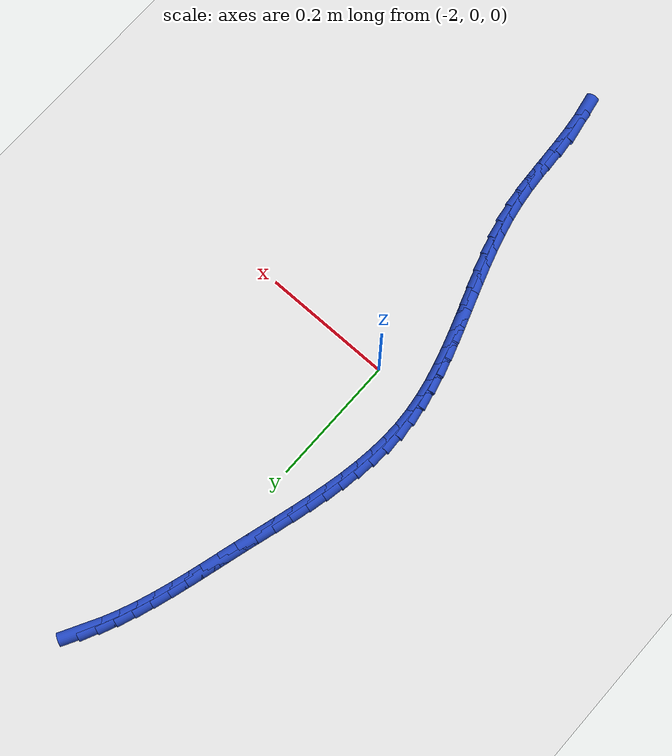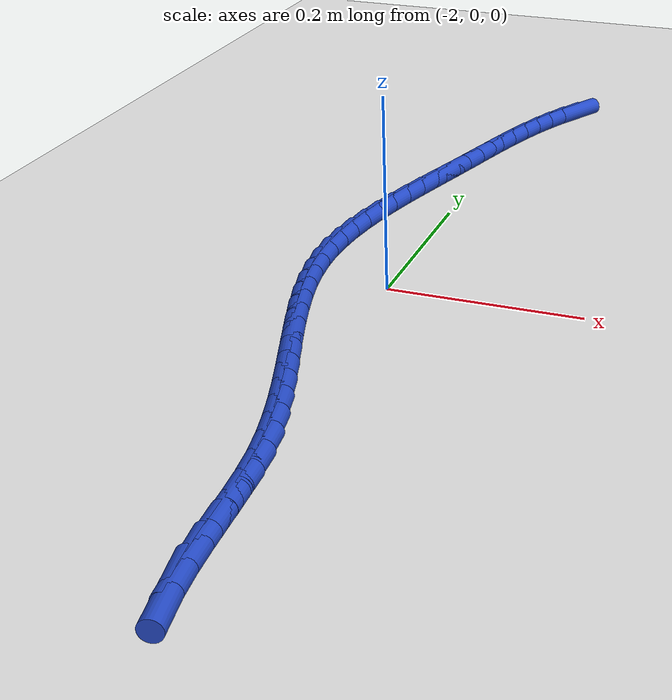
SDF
<sdf version="1.6">
 <world name="default">
  <model name="ground_plane">
   <static>1</static>
   <link name="link">
    <collision name="collision">
     <geometry><plane><normal>0 0 1</normal><size>100 100</size></plane></geometry>
     <surface><friction><ode><mu>100</mu><mu2>50</mu2></ode></friction></surface>
    </collision>
    <visual name="visual">
     <cast_shadows>0</cast_shadows>
     <geometry><plane><normal>0 0 1</normal><size>100 100</size></plane></geometry>
     <material>
      <script><uri>file://media/materials/scripts/gazebo.material</uri><name>Gazebo/WhiteGlow</name></script>
     </material>
    </visual>
   </link>
  </model>
  <model name="line">
   <link name="link_100">
    <pose>-1.941502955201517 0.5482518244195889 0.01 0 1.57 1.0692731683474574</pose>
    <collision name="collision">
     <geometry><cylinder><radius>0.01</radius><length>0.08</length></cylinder></geometry>
    </collision>
    <visual name="visual">
     <material>
      <script><name>Gazebo/Blue</name><uri>file://media/materials/scripts/gazebo.material</uri></script>
     </material>
     <geometry><cylinder><radius>0.01</radius><length>0.08</length></cylinder></geometry>
    </visual>
   </link>
   <link name="link_101">
    <pose>-1.9543376901901044 0.524842816202541 0.01 0 1.57 1.1289469746485805</pose>
    <collision name="collision">
     <geometry><cylinder><radius>0.01</radius><length>0.08</length></cylinder></geometry>
    </collision>
    <visual name="visual">
     <material>
      <script><name>Gazebo/Blue</name><uri>file://media/materials/scripts/gazebo.material</uri></script>
     </material>
     <geometry><cylinder><radius>0.01</radius><length>0.08</length></cylinder></geometry>
    </visual>
   </link>
   <link name="link_102">
    <pose>-1.965840463904415 0.5005262010480431 0.01 0 1.57 1.179040808273105</pose>
    <collision name="collision">
     <geometry><cylinder><radius>0.01</radius><length>0.08</length></cylinder></geometry>
    </collision>
    <visual name="visual">
     <material>
      <script><name>Gazebo/Blue</name><uri>file://media/materials/scripts/gazebo.material</uri></script>
     </material>
     <geometry><cylinder><radius>0.01</radius><length>0.08</length></cylinder></geometry>
    </visual>
   </link>
   <link name="link_103">
    <pose>-1.976210686622561 0.4754233002572337 0.01 0 1.57 1.219732508679535</pose>
    <collision name="collision">
     <geometry><cylinder><radius>0.01</radius><length>0.08</length></cylinder></geometry>
    </collision>
    <visual name="visual">
     <material>
      <script><name>Gazebo/Blue</name><uri>file://media/materials/scripts/gazebo.material</uri></script>
     </material>
     <geometry><cylinder><radius>0.01</radius><length>0.08</length></cylinder></geometry>
    </visual>
   </link>
   <link name="link_104">
    <pose>-1.9856477686226572 0.4496554351312512 0.01 0 1.57 1.2513444717028135</pose>
    <collision name="collision">
     <geometry><cylinder><radius>0.01</radius><length>0.08</length></cylinder></geometry>
    </collision>
    <visual name="visual">
     <material>
      <script><name>Gazebo/Blue</name><uri>file://media/materials/scripts/gazebo.material</uri></script>
     </material>
     <geometry><cylinder><radius>0.01</radius><length>0.08</length></cylinder></geometry>
    </visual>
   </link>
   <link name="link_105">
    <pose>-1.9943511201828177 0.42334392697123513 0.01 0 1.57 1.2742381621235594</pose>
    <collision name="collision">
     <geometry><cylinder><radius>0.01</radius><length>0.08</length></cylinder></geometry>
    </collision>
    <visual name="visual">
     <material>
      <script><name>Gazebo/Blue</name><uri>file://media/materials/scripts/gazebo.material</uri></script>
     </material>
     <geometry><cylinder><radius>0.01</radius><length>0.08</length></cylinder></geometry>
    </visual>
   </link>
   <link name="link_106">
    <pose>-2.002520151581156 0.3966100970783239 0.01 0 1.57 1.288742928952122</pose>
    <collision name="collision">
     <geometry><cylinder><radius>0.01</radius><length>0.08</length></cylinder></geometry>
    </collision>
    <visual name="visual">
     <material>
      <script><name>Gazebo/Blue</name><uri>file://media/materials/scripts/gazebo.material</uri></script>
     </material>
     <geometry><cylinder><radius>0.01</radius><length>0.08</length></cylinder></geometry>
    </visual>
   </link>
   <link name="link_107">
    <pose>-2.010354273095785 0.3695752667536561 0.01 0 1.57 1.2951128282152966</pose>
    <collision name="collision">
     <geometry><cylinder><radius>0.01</radius><length>0.08</length></cylinder></geometry>
    </collision>
    <visual name="visual">
     <material>
      <script><name>Gazebo/Blue</name><uri>file://media/materials/scripts/gazebo.material</uri></script>
     </material>
     <geometry><cylinder><radius>0.01</radius><length>0.08</length></cylinder></geometry>
    </visual>
   </link>
   <link name="link_108">
    <pose>-2.0180528950048204 0.3423607572983701 0.01 0 1.57 1.2935065624150435</pose>
    <collision name="collision">
     <geometry><cylinder><radius>0.01</radius><length>0.08</length></cylinder></geometry>
    </collision>
    <visual name="visual">
     <material>
      <script><name>Gazebo/Blue</name><uri>file://media/materials/scripts/gazebo.material</uri></script>
     </material>
     <geometry><cylinder><radius>0.01</radius><length>0.08</length></cylinder></geometry>
    </visual>
   </link>
   <link name="link_109">
    <pose>-2.025815365289009 0.3150878724017007 0.01 0 1.57 1.2872684499061213</pose>
    <collision name="collision">
     <geometry><cylinder><radius>0.01</radius><length>0.08</length></cylinder></geometry>
    </collision>
    <visual name="visual">
     <material>
      <script><name>Gazebo/Blue</name><uri>file://media/materials/scripts/gazebo.material</uri></script>
     </material>
     <geometry><cylinder><radius>0.01</radius><length>0.08</length></cylinder></geometry>
    </visual>
   </link>
   <link name="link_110">
    <pose>-2.033751147054904 0.2878525046645457 0.01 0 1.57 1.2862510630631867</pose>
    <collision name="collision">
     <geometry><cylinder><radius>0.01</radius><length>0.08</length></cylinder></geometry>
    </collision>
    <visual name="visual">
     <material>
      <script><name>Gazebo/Blue</name><uri>file://media/materials/scripts/gazebo.material</uri></script>
     </material>
     <geometry><cylinder><radius>0.01</radius><length>0.08</length></cylinder></geometry>
    </visual>
   </link>
   <link name="link_111">
    <pose>-2.041700258716204 0.2606743727714146 0.01 0 1.57 1.2923285841082104</pose>
    <collision name="collision">
     <geometry><cylinder><radius>0.01</radius><length>0.08</length></cylinder></geometry>
    </collision>
    <visual name="visual">
     <material>
      <script><name>Gazebo/Blue</name><uri>file://media/materials/scripts/gazebo.material</uri></script>
     </material>
     <geometry><cylinder><radius>0.01</radius><length>0.08</length></cylinder></geometry>
    </visual>
   </link>
   <link name="link_112">
    <pose>-2.0494524431242516 0.2335589821504966 0.01 0 1.57 1.305628388655664</pose>
    <collision name="collision">
     <geometry><cylinder><radius>0.01</radius><length>0.08</length></cylinder></geometry>
    </collision>
    <visual name="visual">
     <material>
      <script><name>Gazebo/Blue</name><uri>file://media/materials/scripts/gazebo.material</uri></script>
     </material>
     <geometry><cylinder><radius>0.01</radius><length>0.08</length></cylinder></geometry>
    </visual>
   </link>
   <link name="link_113">
    <pose>-2.056797443130389 0.20651183822998256 0.01 0 1.57 1.3263686787005735</pose>
    <collision name="collision">
     <geometry><cylinder><radius>0.01</radius><length>0.08</length></cylinder></geometry>
    </collision>
    <visual name="visual">
     <material>
      <script><name>Gazebo/Blue</name><uri>file://media/materials/scripts/gazebo.material</uri></script>
     </material>
     <geometry><cylinder><radius>0.01</radius><length>0.08</length></cylinder></geometry>
    </visual>
   </link>
   <link name="link_114">
    <pose>-2.0635250015859548 0.17953844643806166 0.01 0 1.57 1.3548436988760484</pose>
    <collision name="collision">
     <geometry><cylinder><radius>0.01</radius><length>0.08</length></cylinder></geometry>
    </collision>
    <visual name="visual">
     <material>
      <script><name>Gazebo/Blue</name><uri>file://media/materials/scripts/gazebo.material</uri></script>
     </material>
     <geometry><cylinder><radius>0.01</radius><length>0.08</length></cylinder></geometry>
    </visual>
   </link>
   <link name="link_115">
    <pose>-2.0694248613422923 0.15264431220292343 0.01 0 1.57 1.3913951820038368</pose>
    <collision name="collision">
     <geometry><cylinder><radius>0.01</radius><length>0.08</length></cylinder></geometry>
    </collision>
    <visual name="visual">
     <material>
      <script><name>Gazebo/Blue</name><uri>file://media/materials/scripts/gazebo.material</uri></script>
     </material>
     <geometry><cylinder><radius>0.01</radius><length>0.08</length></cylinder></geometry>
    </visual>
   </link>
   <link name="link_116">
    <pose>-2.0742867652507435 0.12583494095275843 0.01 0 1.57 1.4363645716560793</pose>
    <collision name="collision">
     <geometry><cylinder><radius>0.01</radius><length>0.08</length></cylinder></geometry>
    </collision>
    <visual name="visual">
     <material>
      <script><name>Gazebo/Blue</name><uri>file://media/materials/scripts/gazebo.material</uri></script>
     </material>
     <geometry><cylinder><radius>0.01</radius><length>0.08</length></cylinder></geometry>
    </visual>
   </link>
   <link name="link_117">
    <pose>-2.0779004561626477 0.09911583811575606 0.01 0 1.57 1.4900201297377609</pose>
    <collision name="collision">
     <geometry><cylinder><radius>0.01</radius><length>0.08</length></cylinder></geometry>
    </collision>
    <visual name="visual">
     <material>
      <script><name>Gazebo/Blue</name><uri>file://media/materials/scripts/gazebo.material</uri></script>
     </material>
     <geometry><cylinder><radius>0.01</radius><length>0.08</length></cylinder></geometry>
    </visual>
   </link>
   <link name="link_118">
    <pose>-2.0800556769293483 0.07249250912010612 0.01 0 1.57 1.552455401934248</pose>
    <collision name="collision">
     <geometry><cylinder><radius>0.01</radius><length>0.08</length></cylinder></geometry>
    </collision>
    <visual name="visual">
     <material>
      <script><name>Gazebo/Blue</name><uri>file://media/materials/scripts/gazebo.material</uri></script>
     </material>
     <geometry><cylinder><radius>0.01</radius><length>0.08</length></cylinder></geometry>
    </visual>
   </link>
   <link name="link_119">
    <pose>-2.0805421704021847 0.04597045939399802 0.01 0 1.57 -1.5182510078453524</pose>
    <collision name="collision">
     <geometry><cylinder><radius>0.01</radius><length>0.08</length></cylinder></geometry>
    </collision>
    <visual name="visual">
     <material>
      <script><name>Gazebo/Blue</name><uri>file://media/materials/scripts/gazebo.material</uri></script>
     </material>
     <geometry><cylinder><radius>0.01</radius><length>0.08</length></cylinder></geometry>
    </visual>
   </link>
   <link name="link_120">
    <pose>-2.079152881943194 0.019554983420783698 0.01 0 1.57 -1.4464111956761225</pose>
    <collision name="collision">
     <geometry><cylinder><radius>0.01</radius><length>0.08</length></cylinder></geometry>
    </collision>
    <visual name="visual">
     <material>
      <script><name>Gazebo/Blue</name><uri>file://media/materials/scripts/gazebo.material</uri></script>
     </material>
     <geometry><cylinder><radius>0.01</radius><length>0.08</length></cylinder></geometry>
    </visual>
   </link>
   <link name="link_121">
    <pose>-2.0758626280704604 -0.006760603911369987 0.01 0 1.57 -1.384706589191833</pose>
    <collision name="collision">
     <geometry><cylinder><radius>0.01</radius><length>0.08</length></cylinder></geometry>
    </collision>
    <visual name="visual">
     <material>
      <script><name>Gazebo/Blue</name><uri>file://media/materials/scripts/gazebo.material</uri></script>
     </material>
     <geometry><cylinder><radius>0.01</radius><length>0.08</length></cylinder></geometry>
    </visual>
   </link>
   <link name="link_122">
    <pose>-2.070922368586277 -0.03300117688089757 0.01 0 1.57 -1.3341634809378022</pose>
    <collision name="collision">
     <geometry><cylinder><radius>0.01</radius><length>0.08</length></cylinder></geometry>
    </collision>
    <visual name="visual">
     <material>
      <script><name>Gazebo/Blue</name><uri>file://media/materials/scripts/gazebo.material</uri></script>
     </material>
     <geometry><cylinder><radius>0.01</radius><length>0.08</length></cylinder></geometry>
    </visual>
   </link>
   <link name="link_123">
    <pose>-2.0646061572044 -0.059193130929438086 0.01 0 1.57 -1.2945807226819928</pose>
    <collision name="collision">
     <geometry><cylinder><radius>0.01</radius><length>0.08</length></cylinder></geometry>
    </collision>
    <visual name="visual">
     <material>
      <script><name>Gazebo/Blue</name><uri>file://media/materials/scripts/gazebo.material</uri></script>
     </material>
     <geometry><cylinder><radius>0.01</radius><length>0.08</length></cylinder></geometry>
    </visual>
   </link>
   <link name="link_124">
    <pose>-2.0571880476385864 -0.08536286149863068 0.01 0 1.57 -1.2655946720675104</pose>
    <collision name="collision">
     <geometry><cylinder><radius>0.01</radius><length>0.08</length></cylinder></geometry>
    </collision>
    <visual name="visual">
     <material>
      <script><name>Gazebo/Blue</name><uri>file://media/materials/scripts/gazebo.material</uri></script>
     </material>
     <geometry><cylinder><radius>0.01</radius><length>0.08</length></cylinder></geometry>
    </visual>
   </link>
   <link name="link_125">
    <pose>-2.0489420936025935 -0.11153676403011518 0.01 0 1.57 -1.2468176853279556</pose>
    <collision name="collision">
     <geometry><cylinder><radius>0.01</radius><length>0.08</length></cylinder></geometry>
    </collision>
    <visual name="visual">
     <material>
      <script><name>Gazebo/Blue</name><uri>file://media/materials/scripts/gazebo.material</uri></script>
     </material>
     <geometry><cylinder><radius>0.01</radius><length>0.08</length></cylinder></geometry>
    </visual>
   </link>
   <link name="link_126">
    <pose>-2.040142348810179 -0.13774123396552929 0.01 0 1.57 -1.2379266006837095</pose>
    <collision name="collision">
     <geometry><cylinder><radius>0.01</radius><length>0.08</length></cylinder></geometry>
    </collision>
    <visual name="visual">
     <material>
      <script><name>Gazebo/Blue</name><uri>file://media/materials/scripts/gazebo.material</uri></script>
     </material>
     <geometry><cylinder><radius>0.01</radius><length>0.08</length></cylinder></geometry>
    </visual>
   </link>
   <link name="link_127">
    <pose>-2.031062866975097 -0.16400266674651276 0.01 0 1.57 -1.2387112652195926</pose>
    <collision name="collision">
     <geometry><cylinder><radius>0.01</radius><length>0.08</length></cylinder></geometry>
    </collision>
    <visual name="visual">
     <material>
      <script><name>Gazebo/Blue</name><uri>file://media/materials/scripts/gazebo.material</uri></script>
     </material>
     <geometry><cylinder><radius>0.01</radius><length>0.08</length></cylinder></geometry>
    </visual>
   </link>
   <link name="link_128">
    <pose>-2.021977701811107 -0.19034745781470475 0.01 0 1.57 -1.2490929536112023</pose>
    <collision name="collision">
     <geometry><cylinder><radius>0.01</radius><length>0.08</length></cylinder></geometry>
    </collision>
    <visual name="visual">
     <material>
      <script><name>Gazebo/Blue</name><uri>file://media/materials/scripts/gazebo.material</uri></script>
     </material>
     <geometry><cylinder><radius>0.01</radius><length>0.08</length></cylinder></geometry>
    </visual>
   </link>
   <link name="link_129">
    <pose>-2.013160907031964 -0.21680200261174432 0.01 0 1.57 -1.2691186370022658</pose>
    <collision name="collision">
     <geometry><cylinder><radius>0.01</radius><length>0.08</length></cylinder></geometry>
    </collision>
    <visual name="visual">
     <material>
      <script><name>Gazebo/Blue</name><uri>file://media/materials/scripts/gazebo.material</uri></script>
     </material>
     <geometry><cylinder><radius>0.01</radius><length>0.08</length></cylinder></geometry>
    </visual>
   </link>
   <link name="link_130">
    <pose>-2.0048865363514268 -0.24339269657927065 0.01 0 1.57 -1.2989322929716465</pose>
    <collision name="collision">
     <geometry><cylinder><radius>0.01</radius><length>0.08</length></cylinder></geometry>
    </collision>
    <visual name="visual">
     <material>
      <script><name>Gazebo/Blue</name><uri>file://media/materials/scripts/gazebo.material</uri></script>
     </material>
     <geometry><cylinder><radius>0.01</radius><length>0.08</length></cylinder></geometry>
    </visual>
   </link>
   <link name="link_131">
    <pose>-1.9974286434832496 -0.27014593515892277 0.01 0 1.57 -1.3387202584663513</pose>
    <collision name="collision">
     <geometry><cylinder><radius>0.01</radius><length>0.08</length></cylinder></geometry>
    </collision>
    <visual name="visual">
     <material>
      <script><name>Gazebo/Blue</name><uri>file://media/materials/scripts/gazebo.material</uri></script>
     </material>
     <geometry><cylinder><radius>0.01</radius><length>0.08</length></cylinder></geometry>
    </visual>
   </link>
   <link name="link_132">
    <pose>-1.991061282141191 -0.2970881137923405 0.01 0 1.57 -1.3886253050121562</pose>
    <collision name="collision">
     <geometry><cylinder><radius>0.01</radius><length>0.08</length></cylinder></geometry>
    </collision>
    <visual name="visual">
     <material>
      <script><name>Gazebo/Blue</name><uri>file://media/materials/scripts/gazebo.material</uri></script>
     </material>
     <geometry><cylinder><radius>0.01</radius><length>0.08</length></cylinder></geometry>
    </visual>
   </link>
   <link name="link_133">
    <pose>-1.9860585060390077 -0.3242456279211617 0.01 0 1.57 -1.44607622445734</pose>
    <collision name="collision">
     <geometry><cylinder><radius>0.01</radius><length>0.08</length></cylinder></geometry>
    </collision>
    <visual name="visual">
     <material>
      <script><name>Gazebo/Blue</name><uri>file://media/materials/scripts/gazebo.material</uri></script>
     </material>
     <geometry><cylinder><radius>0.01</radius><length>0.08</length></cylinder></geometry>
    </visual>
   </link>
   <link name="link_134">
    <pose>-1.9826249129127635 -0.35163312418983916 0.01 0 1.57 -1.4911358803815191</pose>
    <collision name="collision">
     <geometry><cylinder><radius>0.01</radius><length>0.08</length></cylinder></geometry>
    </collision>
    <visual name="visual">
     <material>
      <script><name>Gazebo/Blue</name><uri>file://media/materials/scripts/gazebo.material</uri></script>
     </material>
     <geometry><cylinder><radius>0.01</radius><length>0.08</length></cylinder></geometry>
    </visual>
   </link>
   <link name="link_135">
    <pose>-1.9804263328104075 -0.3791741142173215 0.01 0 1.57 -1.514662411829796</pose>
    <collision name="collision">
     <geometry><cylinder><radius>0.01</radius><length>0.08</length></cylinder></geometry>
    </collision>
    <visual name="visual">
     <material>
      <script><name>Gazebo/Blue</name><uri>file://media/materials/scripts/gazebo.material</uri></script>
     </material>
     <geometry><cylinder><radius>0.01</radius><length>0.08</length></cylinder></geometry>
    </visual>
   </link>
   <link name="link_136">
    <pose>-1.9788767896941997 -0.40674951546825355 0.01 0 1.57 -1.5167245893435743</pose>
    <collision name="collision">
     <geometry><cylinder><radius>0.01</radius><length>0.08</length></cylinder></geometry>
    </collision>
    <visual name="visual">
     <material>
      <script><name>Gazebo/Blue</name><uri>file://media/materials/scripts/gazebo.material</uri></script>
     </material>
     <geometry><cylinder><radius>0.01</radius><length>0.08</length></cylinder></geometry>
    </visual>
   </link>
   <link name="link_137">
    <pose>-1.9773888808365008 -0.43424000407614005 0.01 0 1.57 -1.4971316255214608</pose>
    <collision name="collision">
     <geometry><cylinder><radius>0.01</radius><length>0.08</length></cylinder></geometry>
    </collision>
    <visual name="visual">
     <material>
      <script><name>Gazebo/Blue</name><uri>file://media/materials/scripts/gazebo.material</uri></script>
     </material>
     <geometry><cylinder><radius>0.01</radius><length>0.08</length></cylinder></geometry>
    </visual>
   </link>
   <link name="link_138">
    <pose>-1.9753752035096674 -0.4615262561744855 0.01 0 1.57 -1.4553426094352022</pose>
    <collision name="collision">
     <geometry><cylinder><radius>0.01</radius><length>0.08</length></cylinder></geometry>
    </collision>
    <visual name="visual">
     <material>
      <script><name>Gazebo/Blue</name><uri>file://media/materials/scripts/gazebo.material</uri></script>
     </material>
     <geometry><cylinder><radius>0.01</radius><length>0.08</length></cylinder></geometry>
    </visual>
   </link>
   <link name="link_139">
    <pose>-1.9722483549860599 -0.48848894789679453 0.01 0 1.57 -1.3907369956107398</pose>
    <collision name="collision">
     <geometry><cylinder><radius>0.01</radius><length>0.08</length></cylinder></geometry>
    </collision>
    <visual name="visual">
     <material>
      <script><name>Gazebo/Blue</name><uri>file://media/materials/scripts/gazebo.material</uri></script>
     </material>
     <geometry><cylinder><radius>0.01</radius><length>0.08</length></cylinder></geometry>
    </visual>
   </link>
  </model>
 </world>
</sdf>
